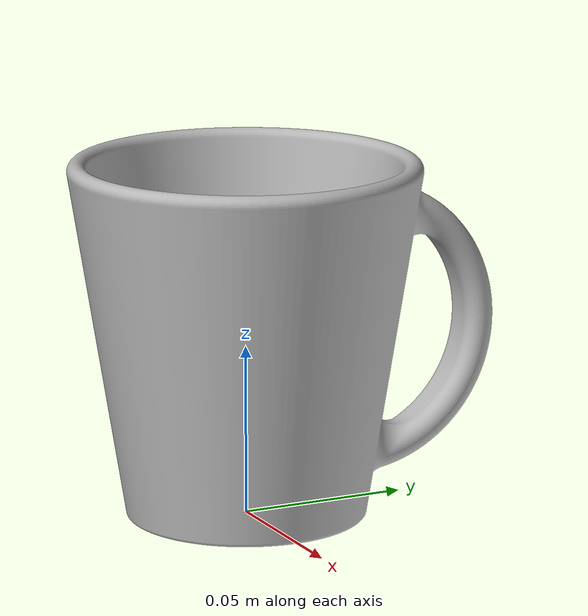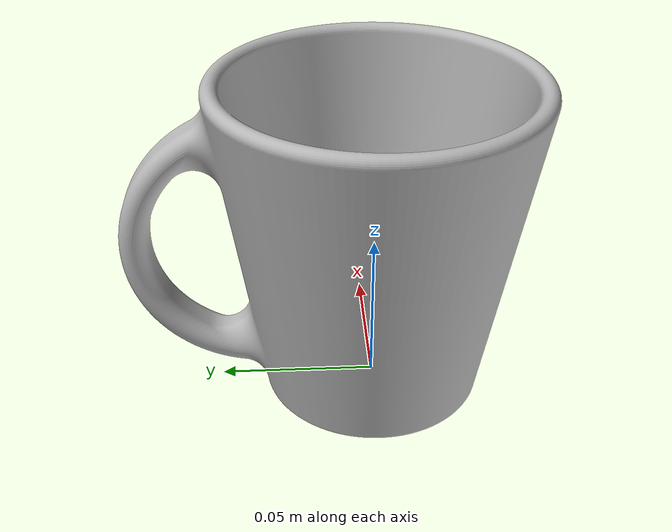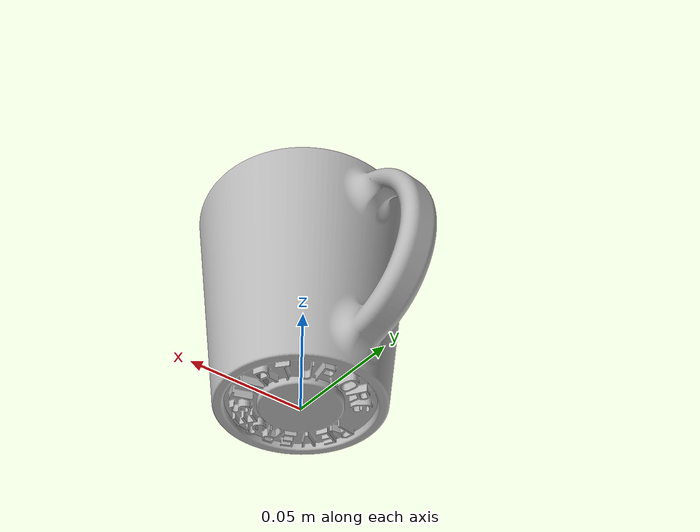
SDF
<?xml version="1.0" ?>
<sdf version="1.5">
  <model name="mpnet_coffee">
    <link name="mpnet_coffee_link">
      <inertial>
        <mass>0.1</mass>
      </inertial>
      <visual name="mpnet_coffee_visual">
        <geometry>
          <mesh>
            <uri>model://mpnet_coffee/meshes/coffee.stl</uri>
            <scale>0.035 0.035 0.035</scale>
          </mesh>
        </geometry>
      </visual>

      <collision name="mpnet_coffee_collision">
        <geometry>
          <mesh>
            <uri>model://mpnet_coffee/meshes/coffee.stl</uri>
            <scale>0.035 0.035 0.035</scale>
          </mesh>
        </geometry>
      </collision>

    </link>
  </model>
</sdf>
